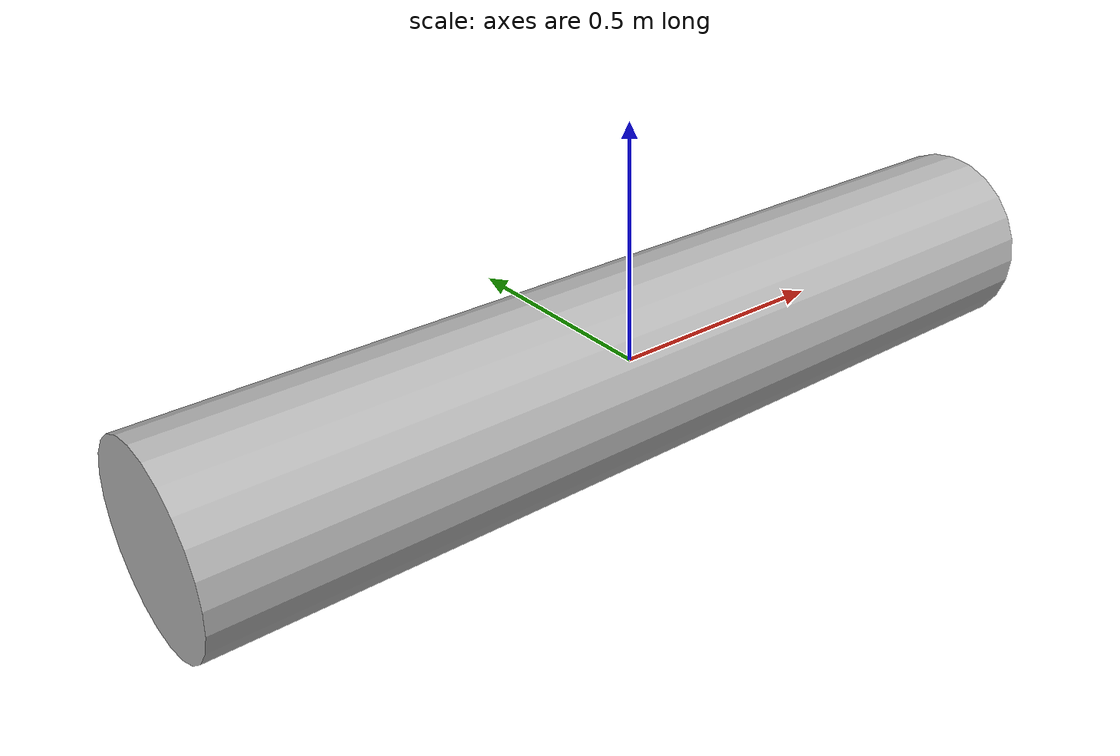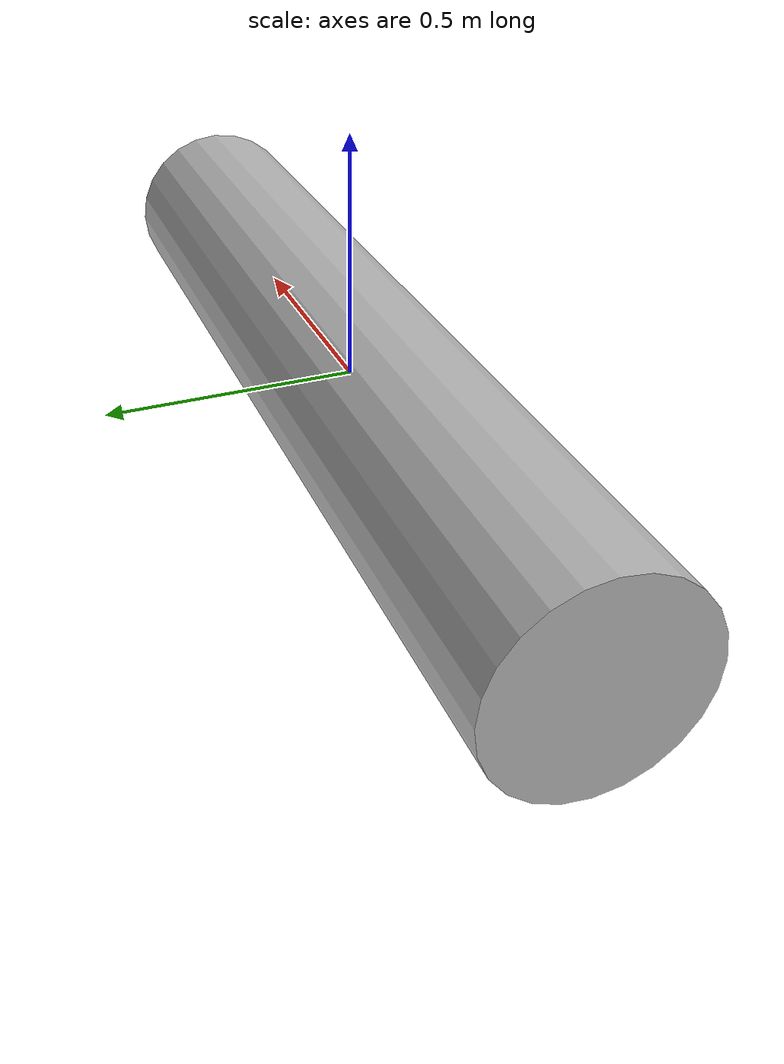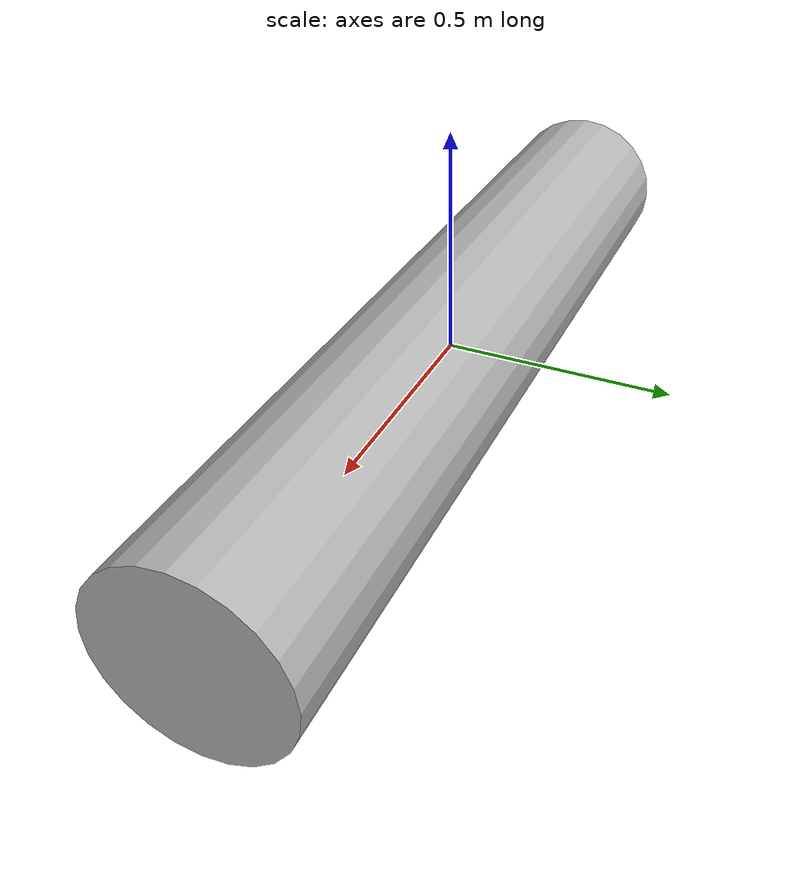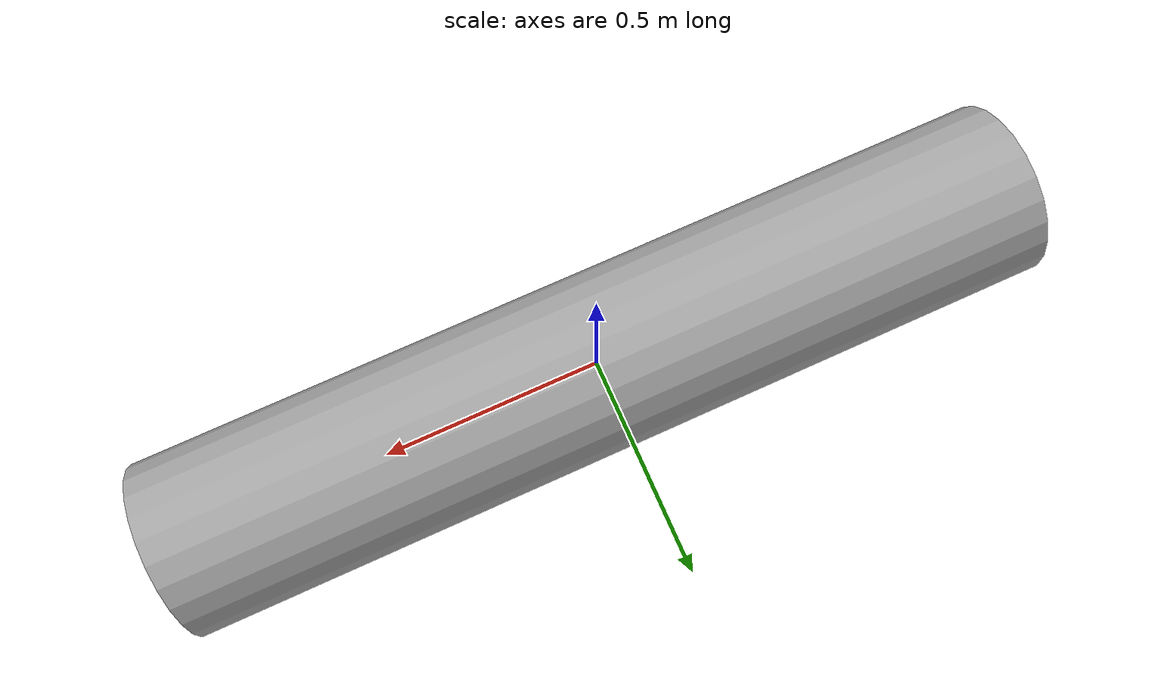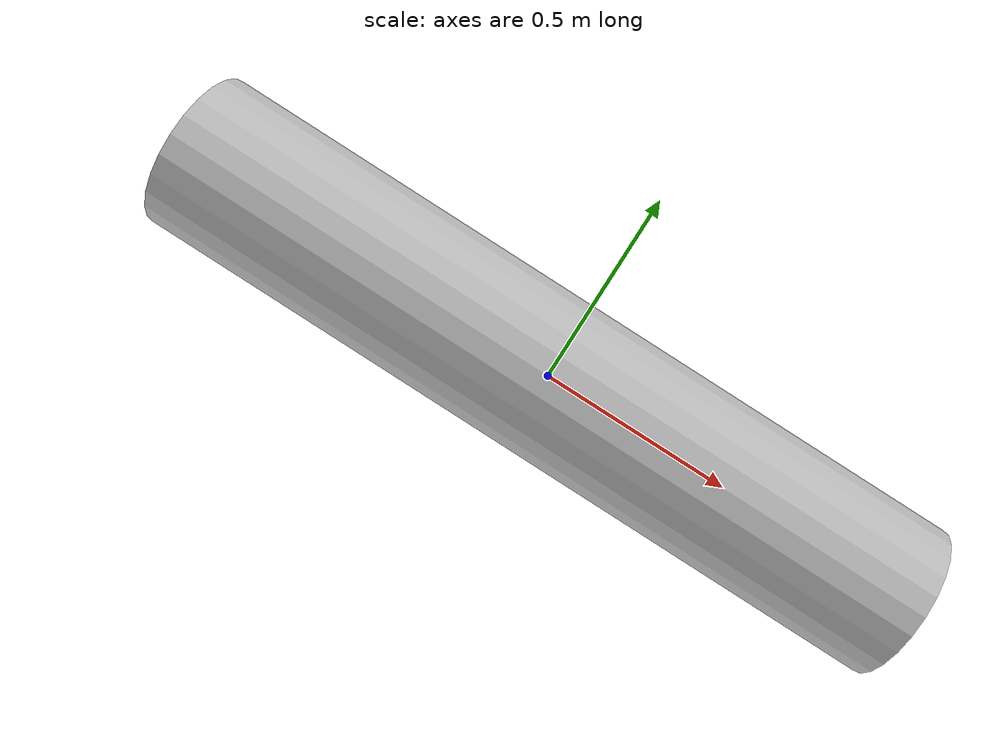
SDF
<?xml version="1.0" ?>
<sdf version="1.6">
  <world name="buoyancy_rotated_collision">

    <physics name="1ms" type="ode">
      <max_step_size>0.001</max_step_size>
      <real_time_factor>0</real_time_factor>
    </physics>
    <plugin
      filename="gz-sim-physics-system"
      name="gz::sim::systems::Physics">
    </plugin>
    <plugin
      filename="gz-sim-scene-broadcaster-system"
      name="gz::sim::systems::SceneBroadcaster">
    </plugin>
    <plugin
      filename="gz-sim-buoyancy-system"
      name="gz::sim::systems::Buoyancy">
      <graded_buoyancy>
        <default_density>1000</default_density>
        <density_change>
          <above_depth>0</above_depth>
          <density>1</density>
        </density_change>
      </graded_buoyancy>
    </plugin>

    <!-- mass = 500 * volume = 500 * pi * 0.2^2 * 2, so it floats half-submerged -->
    <model name="horizontal_cylinder">
      <pose>0 0 0 0 0 0</pose>
      <link name="link">
        <inertial>
          <mass>125.66</mass>
          <inertia>
            <ixx>2.51</ixx>
            <ixy>0</ixy>
            <ixz>0</ixz>
            <iyy>43.14</iyy>
            <iyz>0</iyz>
            <izz>43.14</izz>
          </inertia>
        </inertial>
        <visual name="visual">
          <pose>0 0 0 0 1.5707963267948966 0</pose>
          <geometry>
            <cylinder>
              <radius>0.2</radius>
              <length>2.0</length>
            </cylinder>
          </geometry>
        </visual>
        <collision name="collision">
          <pose>0 0 0 0 1.5707963267948966 0</pose>
          <geometry>
            <cylinder>
              <radius>0.2</radius>
              <length>2.0</length>
            </cylinder>
          </geometry>
        </collision>
      </link>
    </model>
  </world>
</sdf>
